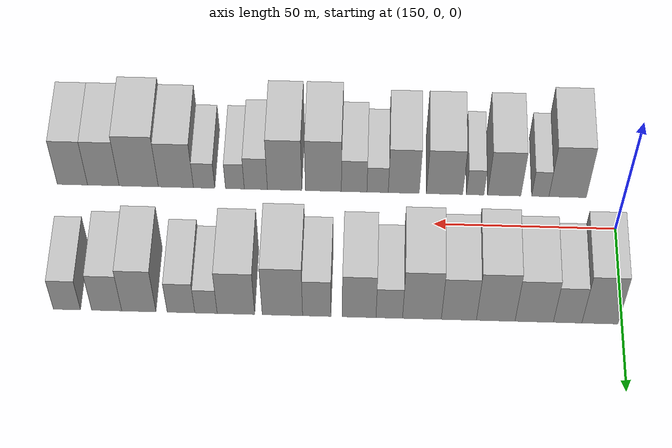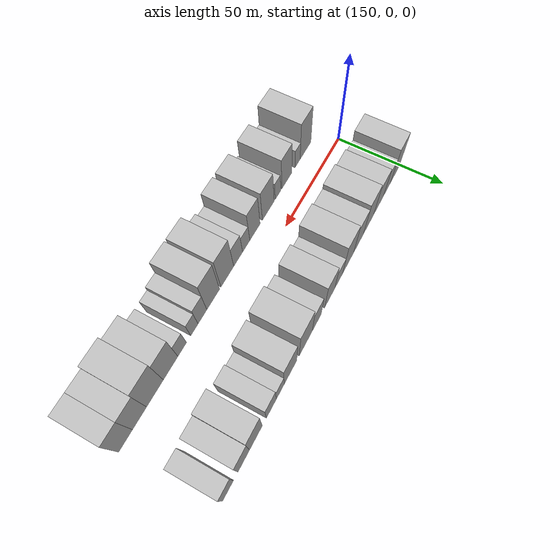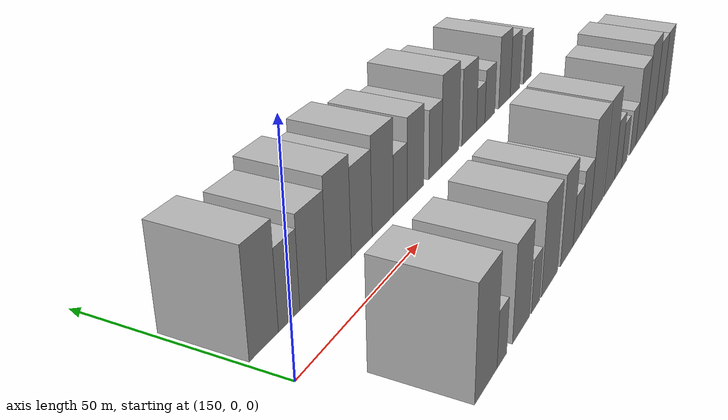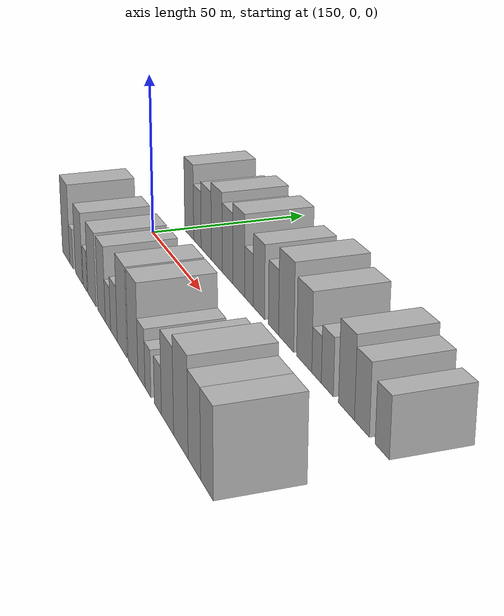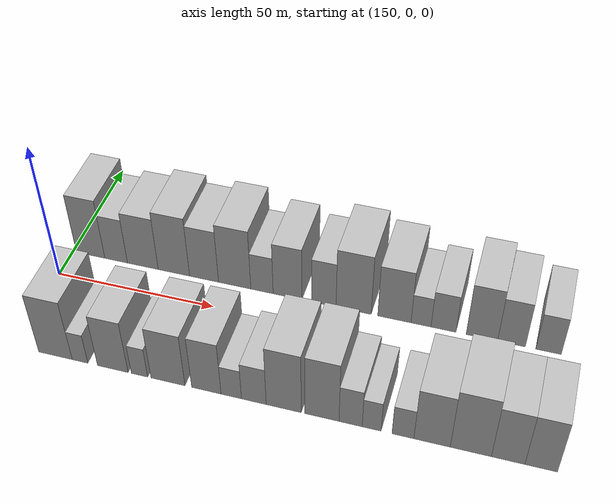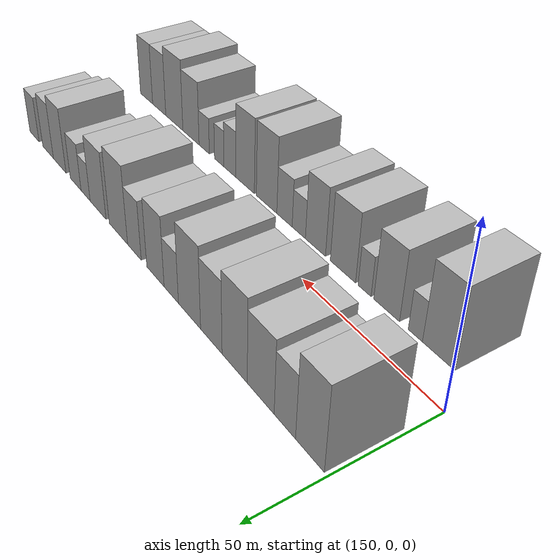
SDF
<sdf version="1.6">
 <world name="default">
  <model name="building_16">
   <static>1</static>
   <pose>155.8896 20.0000 0 0.000000 0.000000 1.570796</pose>
   <link name="link">
    <pose>0 0 12.00 0 0 0</pose>
    <collision name="collision"><geometry><box><size>20.0000 9.6118 24.0000</size></box></geometry></collision>
    <visual name="visual">
     <cast_shadows>0</cast_shadows>
     <geometry><box><size>20.0000 9.6118 24.0000</size></box></geometry>
     <material>
      <script>
       <uri>model://HANNAS_wall/materials/scripts</uri>
       <uri>model://HANNAS_wall/materials/textures</uri>
       <name>vrc/HANNAS_wall</name>
      </script>
     </material>
    </visual>
   </link>
  </model>
  <model name="building_17">
   <static>1</static>
   <pose>164.4881 20.0000 0 0.000000 0.000000 1.570796</pose>
   <link name="link">
    <pose>0 0 9.00 0 0 0</pose>
    <collision name="collision"><geometry><box><size>20.0000 7.5852 18.0000</size></box></geometry></collision>
    <visual name="visual">
     <cast_shadows>0</cast_shadows>
     <geometry><box><size>20.0000 7.5852 18.0000</size></box></geometry>
     <material>
      <script>
       <uri>model://HANNAS_wall/materials/scripts</uri>
       <uri>model://HANNAS_wall/materials/textures</uri>
       <name>vrc/HANNAS_wall</name>
      </script>
     </material>
    </visual>
   </link>
  </model>
  <model name="building_18">
   <static>1</static>
   <pose>173.3869 20.0000 0 0.000000 0.000000 1.570796</pose>
   <link name="link">
    <pose>0 0 10.50 0 0 0</pose>
    <collision name="collision"><geometry><box><size>20.0000 10.2125 21.0000</size></box></geometry></collision>
    <visual name="visual">
     <cast_shadows>0</cast_shadows>
     <geometry><box><size>20.0000 10.2125 21.0000</size></box></geometry>
     <material>
      <script>
       <uri>model://HANNAS_wall/materials/scripts</uri>
       <uri>model://HANNAS_wall/materials/textures</uri>
       <name>vrc/HANNAS_wall</name>
      </script>
     </material>
    </visual>
   </link>
  </model>
  <model name="building_19">
   <static>1</static>
   <pose>183.6347 20.0000 0 0.000000 0.000000 1.570796</pose>
   <link name="link">
    <pose>0 0 12.00 0 0 0</pose>
    <collision name="collision"><geometry><box><size>20.0000 10.2831 24.0000</size></box></geometry></collision>
    <visual name="visual">
     <cast_shadows>0</cast_shadows>
     <geometry><box><size>20.0000 10.2831 24.0000</size></box></geometry>
     <material>
      <script>
       <uri>model://HANNAS_wall/materials/scripts</uri>
       <uri>model://HANNAS_wall/materials/textures</uri>
       <name>vrc/HANNAS_wall</name>
      </script>
     </material>
    </visual>
   </link>
  </model>
  <model name="building_20">
   <static>1</static>
   <pose>193.4591 20.0000 0 0.000000 0.000000 1.570796</pose>
   <link name="link">
    <pose>0 0 10.50 0 0 0</pose>
    <collision name="collision"><geometry><box><size>20.0000 9.3656 21.0000</size></box></geometry></collision>
    <visual name="visual">
     <cast_shadows>0</cast_shadows>
     <geometry><box><size>20.0000 9.3656 21.0000</size></box></geometry>
     <material>
      <script>
       <uri>model://HANNAS_wall/materials/scripts</uri>
       <uri>model://HANNAS_wall/materials/textures</uri>
       <name>vrc/HANNAS_wall</name>
      </script>
     </material>
    </visual>
   </link>
  </model>
  <model name="building_21">
   <static>1</static>
   <pose>203.3100 20.0000 0 0.000000 0.000000 1.570796</pose>
   <link name="link">
    <pose>0 0 12.00 0 0 0</pose>
    <collision name="collision"><geometry><box><size>20.0000 10.3362 24.0000</size></box></geometry></collision>
    <visual name="visual">
     <cast_shadows>0</cast_shadows>
     <geometry><box><size>20.0000 10.3362 24.0000</size></box></geometry>
     <material>
      <script>
       <uri>model://HANNAS_wall/materials/scripts</uri>
       <uri>model://HANNAS_wall/materials/textures</uri>
       <name>vrc/HANNAS_wall</name>
      </script>
     </material>
    </visual>
   </link>
  </model>
  <model name="building_22">
   <static>1</static>
   <pose>212.0211 20.0000 0 0.000000 0.000000 1.570796</pose>
   <link name="link">
    <pose>0 0 7.50 0 0 0</pose>
    <collision name="collision"><geometry><box><size>20.0000 7.0859 15.0000</size></box></geometry></collision>
    <visual name="visual">
     <cast_shadows>0</cast_shadows>
     <geometry><box><size>20.0000 7.0859 15.0000</size></box></geometry>
     <material>
      <script>
       <uri>model://HANNAS_wall/materials/scripts</uri>
       <uri>model://HANNAS_wall/materials/textures</uri>
       <name>vrc/HANNAS_wall</name>
      </script>
     </material>
    </visual>
   </link>
  </model>
  <model name="building_23">
   <static>1</static>
   <pose>220.0758 20.0000 0 0.000000 0.000000 1.570796</pose>
   <link name="link">
    <pose>0 0 10.50 0 0 0</pose>
    <collision name="collision"><geometry><box><size>20.0000 9.0235 21.0000</size></box></geometry></collision>
    <visual name="visual">
     <cast_shadows>0</cast_shadows>
     <geometry><box><size>20.0000 9.0235 21.0000</size></box></geometry>
     <material>
      <script>
       <uri>model://HANNAS_wall/materials/scripts</uri>
       <uri>model://HANNAS_wall/materials/textures</uri>
       <name>vrc/HANNAS_wall</name>
      </script>
     </material>
    </visual>
   </link>
  </model>
  <model name="building_24">
   <static>1</static>
   <pose>231.3806 20.0000 0 0.000000 0.000000 1.570796</pose>
   <link name="link">
    <pose>0 0 9.00 0 0 0</pose>
    <collision name="collision"><geometry><box><size>20.0000 7.5862 18.0000</size></box></geometry></collision>
    <visual name="visual">
     <cast_shadows>0</cast_shadows>
     <geometry><box><size>20.0000 7.5862 18.0000</size></box></geometry>
     <material>
      <script>
       <uri>model://HANNAS_wall/materials/scripts</uri>
       <uri>model://HANNAS_wall/materials/textures</uri>
       <name>vrc/HANNAS_wall</name>
      </script>
     </material>
    </visual>
   </link>
  </model>
  <model name="building_25">
   <static>1</static>
   <pose>240.5744 20.0000 0 0.000000 0.000000 1.570796</pose>
   <link name="link">
    <pose>0 0 12.00 0 0 0</pose>
    <collision name="collision"><geometry><box><size>20.0000 10.8014 24.0000</size></box></geometry></collision>
    <visual name="visual">
     <cast_shadows>0</cast_shadows>
     <geometry><box><size>20.0000 10.8014 24.0000</size></box></geometry>
     <material>
      <script>
       <uri>model://HANNAS_wall/materials/scripts</uri>
       <uri>model://HANNAS_wall/materials/textures</uri>
       <name>vrc/HANNAS_wall</name>
      </script>
     </material>
    </visual>
   </link>
  </model>
  <model name="building_26">
   <static>1</static>
   <pose>252.9992 20.0000 0 0.000000 0.000000 1.570796</pose>
   <link name="link">
    <pose>0 0 10.50 0 0 0</pose>
    <collision name="collision"><geometry><box><size>20.0000 10.0482 21.0000</size></box></geometry></collision>
    <visual name="visual">
     <cast_shadows>0</cast_shadows>
     <geometry><box><size>20.0000 10.0482 21.0000</size></box></geometry>
     <material>
      <script>
       <uri>model://HANNAS_wall/materials/scripts</uri>
       <uri>model://HANNAS_wall/materials/textures</uri>
       <name>vrc/HANNAS_wall</name>
      </script>
     </material>
    </visual>
   </link>
  </model>
  <model name="building_27">
   <static>1</static>
   <pose>261.0181 20.0000 0 0.000000 0.000000 1.570796</pose>
   <link name="link">
    <pose>0 0 6.00 0 0 0</pose>
    <collision name="collision"><geometry><box><size>20.0000 5.9895 12.0000</size></box></geometry></collision>
    <visual name="visual">
     <cast_shadows>0</cast_shadows>
     <geometry><box><size>20.0000 5.9895 12.0000</size></box></geometry>
     <material>
      <script>
       <uri>model://HANNAS_wall/materials/scripts</uri>
       <uri>model://HANNAS_wall/materials/textures</uri>
       <name>vrc/HANNAS_wall</name>
      </script>
     </material>
    </visual>
   </link>
  </model>
  <model name="building_28">
   <static>1</static>
   <pose>267.7192 20.0000 0 0.000000 0.000000 1.570796</pose>
   <link name="link">
    <pose>0 0 7.50 0 0 0</pose>
    <collision name="collision"><geometry><box><size>20.0000 7.4128 15.0000</size></box></geometry></collision>
    <visual name="visual">
     <cast_shadows>0</cast_shadows>
     <geometry><box><size>20.0000 7.4128 15.0000</size></box></geometry>
     <material>
      <script>
       <uri>model://HANNAS_wall/materials/scripts</uri>
       <uri>model://HANNAS_wall/materials/textures</uri>
       <name>vrc/HANNAS_wall</name>
      </script>
     </material>
    </visual>
   </link>
  </model>
  <model name="building_29">
   <static>1</static>
   <pose>279.0179 20.0000 0 0.000000 0.000000 1.570796</pose>
   <link name="link">
    <pose>0 0 10.50 0 0 0</pose>
    <collision name="collision"><geometry><box><size>20.0000 9.1847 21.0000</size></box></geometry></collision>
    <visual name="visual">
     <cast_shadows>0</cast_shadows>
     <geometry><box><size>20.0000 9.1847 21.0000</size></box></geometry>
     <material>
      <script>
       <uri>model://HANNAS_wall/materials/scripts</uri>
       <uri>model://HANNAS_wall/materials/textures</uri>
       <name>vrc/HANNAS_wall</name>
      </script>
     </material>
    </visual>
   </link>
  </model>
  <model name="building_30">
   <static>1</static>
   <pose>287.6468 20.0000 0 0.000000 0.000000 1.570796</pose>
   <link name="link">
    <pose>0 0 9.00 0 0 0</pose>
    <collision name="collision"><geometry><box><size>20.0000 8.0731 18.0000</size></box></geometry></collision>
    <visual name="visual">
     <cast_shadows>0</cast_shadows>
     <geometry><box><size>20.0000 8.0731 18.0000</size></box></geometry>
     <material>
      <script>
       <uri>model://HANNAS_wall/materials/scripts</uri>
       <uri>model://HANNAS_wall/materials/textures</uri>
       <name>vrc/HANNAS_wall</name>
      </script>
     </material>
    </visual>
   </link>
  </model>
  <model name="building_31">
   <static>1</static>
   <pose>298.3227 20.0000 0 0.000000 0.000000 1.570796</pose>
   <link name="link">
    <pose>0 0 7.50 0 0 0</pose>
    <collision name="collision"><geometry><box><size>20.0000 7.2786 15.0000</size></box></geometry></collision>
    <visual name="visual">
     <cast_shadows>0</cast_shadows>
     <geometry><box><size>20.0000 7.2786 15.0000</size></box></geometry>
     <material>
      <script>
       <uri>model://HANNAS_wall/materials/scripts</uri>
       <uri>model://HANNAS_wall/materials/textures</uri>
       <name>vrc/HANNAS_wall</name>
      </script>
     </material>
    </visual>
   </link>
  </model>
  <model name="building_48">
   <static>1</static>
   <pose>162.7396 -20.0000 0 0.000000 0.000000 1.570796</pose>
   <link name="link">
    <pose>0 0 12.00 0 0 0</pose>
    <collision name="collision"><geometry><box><size>20.0000 10.4164 24.0000</size></box></geometry></collision>
    <visual name="visual">
     <cast_shadows>0</cast_shadows>
     <geometry><box><size>20.0000 10.4164 24.0000</size></box></geometry>
     <material>
      <script>
       <uri>model://HANNAS_wall/materials/scripts</uri>
       <uri>model://HANNAS_wall/materials/textures</uri>
       <name>vrc/HANNAS_wall</name>
      </script>
     </material>
    </visual>
   </link>
  </model>
  <model name="building_49">
   <static>1</static>
   <pose>170.3561 -20.0000 0 0.000000 0.000000 1.570796</pose>
   <link name="link">
    <pose>0 0 6.00 0 0 0</pose>
    <collision name="collision"><geometry><box><size>20.0000 4.8167 12.0000</size></box></geometry></collision>
    <visual name="visual">
     <cast_shadows>0</cast_shadows>
     <geometry><box><size>20.0000 4.8167 12.0000</size></box></geometry>
     <material>
      <script>
       <uri>model://HANNAS_wall/materials/scripts</uri>
       <uri>model://HANNAS_wall/materials/textures</uri>
       <name>vrc/HANNAS_wall</name>
      </script>
     </material>
    </visual>
   </link>
  </model>
  <model name="building_50">
   <static>1</static>
   <pose>180.4227 -20.0000 0 0.000000 0.000000 1.570796</pose>
   <link name="link">
    <pose>0 0 10.50 0 0 0</pose>
    <collision name="collision"><geometry><box><size>20.0000 9.3164 21.0000</size></box></geometry></collision>
    <visual name="visual">
     <cast_shadows>0</cast_shadows>
     <geometry><box><size>20.0000 9.3164 21.0000</size></box></geometry>
     <material>
      <script>
       <uri>model://HANNAS_wall/materials/scripts</uri>
       <uri>model://HANNAS_wall/materials/textures</uri>
       <name>vrc/HANNAS_wall</name>
      </script>
     </material>
    </visual>
   </link>
  </model>
  <model name="building_51">
   <static>1</static>
   <pose>188.5477 -20.0000 0 0.000000 0.000000 1.570796</pose>
   <link name="link">
    <pose>0 0 6.00 0 0 0</pose>
    <collision name="collision"><geometry><box><size>20.0000 4.9336 12.0000</size></box></geometry></collision>
    <visual name="visual">
     <cast_shadows>0</cast_shadows>
     <geometry><box><size>20.0000 4.9336 12.0000</size></box></geometry>
     <material>
      <script>
       <uri>model://HANNAS_wall/materials/scripts</uri>
       <uri>model://HANNAS_wall/materials/textures</uri>
       <name>vrc/HANNAS_wall</name>
      </script>
     </material>
    </visual>
   </link>
  </model>
  <model name="building_52">
   <static>1</static>
   <pose>197.0905 -20.0000 0 0.000000 0.000000 1.570796</pose>
   <link name="link">
    <pose>0 0 10.50 0 0 0</pose>
    <collision name="collision"><geometry><box><size>20.0000 10.1520 21.0000</size></box></geometry></collision>
    <visual name="visual">
     <cast_shadows>0</cast_shadows>
     <geometry><box><size>20.0000 10.1520 21.0000</size></box></geometry>
     <material>
      <script>
       <uri>model://HANNAS_wall/materials/scripts</uri>
       <uri>model://HANNAS_wall/materials/textures</uri>
       <name>vrc/HANNAS_wall</name>
      </script>
     </material>
    </visual>
   </link>
  </model>
  <model name="building_53">
   <static>1</static>
   <pose>208.4896 -20.0000 0 0.000000 0.000000 1.570796</pose>
   <link name="link">
    <pose>0 0 10.50 0 0 0</pose>
    <collision name="collision"><geometry><box><size>20.0000 8.6462 21.0000</size></box></geometry></collision>
    <visual name="visual">
     <cast_shadows>0</cast_shadows>
     <geometry><box><size>20.0000 8.6462 21.0000</size></box></geometry>
     <material>
      <script>
       <uri>model://HANNAS_wall/materials/scripts</uri>
       <uri>model://HANNAS_wall/materials/textures</uri>
       <name>vrc/HANNAS_wall</name>
      </script>
     </material>
    </visual>
   </link>
  </model>
  <model name="building_54">
   <static>1</static>
   <pose>215.7920 -20.0000 0 0.000000 0.000000 1.570796</pose>
   <link name="link">
    <pose>0 0 6.00 0 0 0</pose>
    <collision name="collision"><geometry><box><size>20.0000 5.9585 12.0000</size></box></geometry></collision>
    <visual name="visual">
     <cast_shadows>0</cast_shadows>
     <geometry><box><size>20.0000 5.9585 12.0000</size></box></geometry>
     <material>
      <script>
       <uri>model://HANNAS_wall/materials/scripts</uri>
       <uri>model://HANNAS_wall/materials/textures</uri>
       <name>vrc/HANNAS_wall</name>
      </script>
     </material>
    </visual>
   </link>
  </model>
  <model name="building_55">
   <static>1</static>
   <pose>222.3431 -20.0000 0 0.000000 0.000000 1.570796</pose>
   <link name="link">
    <pose>0 0 7.50 0 0 0</pose>
    <collision name="collision"><geometry><box><size>20.0000 7.1437 15.0000</size></box></geometry></collision>
    <visual name="visual">
     <cast_shadows>0</cast_shadows>
     <geometry><box><size>20.0000 7.1437 15.0000</size></box></geometry>
     <material>
      <script>
       <uri>model://HANNAS_wall/materials/scripts</uri>
       <uri>model://HANNAS_wall/materials/textures</uri>
       <name>vrc/HANNAS_wall</name>
      </script>
     </material>
    </visual>
   </link>
  </model>
  <model name="building_56">
   <static>1</static>
   <pose>230.9429 -20.0000 0 0.000000 0.000000 1.570796</pose>
   <link name="link">
    <pose>0 0 12.00 0 0 0</pose>
    <collision name="collision"><geometry><box><size>20.0000 10.0559 24.0000</size></box></geometry></collision>
    <visual name="visual">
     <cast_shadows>0</cast_shadows>
     <geometry><box><size>20.0000 10.0559 24.0000</size></box></geometry>
     <material>
      <script>
       <uri>model://HANNAS_wall/materials/scripts</uri>
       <uri>model://HANNAS_wall/materials/textures</uri>
       <name>vrc/HANNAS_wall</name>
      </script>
     </material>
    </visual>
   </link>
  </model>
  <model name="building_57">
   <static>1</static>
   <pose>241.7944 -20.0000 0 0.000000 0.000000 1.570796</pose>
   <link name="link">
    <pose>0 0 12.00 0 0 0</pose>
    <collision name="collision"><geometry><box><size>20.0000 9.6470 24.0000</size></box></geometry></collision>
    <visual name="visual">
     <cast_shadows>0</cast_shadows>
     <geometry><box><size>20.0000 9.6470 24.0000</size></box></geometry>
     <material>
      <script>
       <uri>model://HANNAS_wall/materials/scripts</uri>
       <uri>model://HANNAS_wall/materials/textures</uri>
       <name>vrc/HANNAS_wall</name>
      </script>
     </material>
    </visual>
   </link>
  </model>
  <model name="building_58">
   <static>1</static>
   <pose>249.8636 -20.0000 0 0.000000 0.000000 1.570796</pose>
   <link name="link">
    <pose>0 0 7.50 0 0 0</pose>
    <collision name="collision"><geometry><box><size>20.0000 6.4913 15.0000</size></box></geometry></collision>
    <visual name="visual">
     <cast_shadows>0</cast_shadows>
     <geometry><box><size>20.0000 6.4913 15.0000</size></box></geometry>
     <material>
      <script>
       <uri>model://HANNAS_wall/materials/scripts</uri>
       <uri>model://HANNAS_wall/materials/textures</uri>
       <name>vrc/HANNAS_wall</name>
      </script>
     </material>
    </visual>
   </link>
  </model>
  <model name="building_59">
   <static>1</static>
   <pose>255.7365 -20.0000 0 0.000000 0.000000 1.570796</pose>
   <link name="link">
    <pose>0 0 6.00 0 0 0</pose>
    <collision name="collision"><geometry><box><size>20.0000 5.2545 12.0000</size></box></geometry></collision>
    <visual name="visual">
     <cast_shadows>0</cast_shadows>
     <geometry><box><size>20.0000 5.2545 12.0000</size></box></geometry>
     <material>
      <script>
       <uri>model://HANNAS_wall/materials/scripts</uri>
       <uri>model://HANNAS_wall/materials/textures</uri>
       <name>vrc/HANNAS_wall</name>
      </script>
     </material>
    </visual>
   </link>
  </model>
  <model name="building_60">
   <static>1</static>
   <pose>264.3613 -20.0000 0 0.000000 0.000000 1.570796</pose>
   <link name="link">
    <pose>0 0 6.00 0 0 0</pose>
    <collision name="collision"><geometry><box><size>20.0000 5.9952 12.0000</size></box></geometry></collision>
    <visual name="visual">
     <cast_shadows>0</cast_shadows>
     <geometry><box><size>20.0000 5.9952 12.0000</size></box></geometry>
     <material>
      <script>
       <uri>model://HANNAS_wall/materials/scripts</uri>
       <uri>model://HANNAS_wall/materials/textures</uri>
       <name>vrc/HANNAS_wall</name>
      </script>
     </material>
    </visual>
   </link>
  </model>
  <model name="building_61">
   <static>1</static>
   <pose>272.2958 -20.0000 0 0.000000 0.000000 1.570796</pose>
   <link name="link">
    <pose>0 0 10.50 0 0 0</pose>
    <collision name="collision"><geometry><box><size>20.0000 9.8737 21.0000</size></box></geometry></collision>
    <visual name="visual">
     <cast_shadows>0</cast_shadows>
     <geometry><box><size>20.0000 9.8737 21.0000</size></box></geometry>
     <material>
      <script>
       <uri>model://HANNAS_wall/materials/scripts</uri>
       <uri>model://HANNAS_wall/materials/textures</uri>
       <name>vrc/HANNAS_wall</name>
      </script>
     </material>
    </visual>
   </link>
  </model>
  <model name="building_62">
   <static>1</static>
   <pose>282.7330 -20.0000 0 0.000000 0.000000 1.570796</pose>
   <link name="link">
    <pose>0 0 12.00 0 0 0</pose>
    <collision name="collision"><geometry><box><size>20.0000 11.0007 24.0000</size></box></geometry></collision>
    <visual name="visual">
     <cast_shadows>0</cast_shadows>
     <geometry><box><size>20.0000 11.0007 24.0000</size></box></geometry>
     <material>
      <script>
       <uri>model://HANNAS_wall/materials/scripts</uri>
       <uri>model://HANNAS_wall/materials/textures</uri>
       <name>vrc/HANNAS_wall</name>
      </script>
     </material>
    </visual>
   </link>
  </model>
  <model name="building_63">
   <static>1</static>
   <pose>292.6675 -20.0000 0 0.000000 0.000000 1.570796</pose>
   <link name="link">
    <pose>0 0 10.50 0 0 0</pose>
    <collision name="collision"><geometry><box><size>20.0000 8.8683 21.0000</size></box></geometry></collision>
    <visual name="visual">
     <cast_shadows>0</cast_shadows>
     <geometry><box><size>20.0000 8.8683 21.0000</size></box></geometry>
     <material>
      <script>
       <uri>model://HANNAS_wall/materials/scripts</uri>
       <uri>model://HANNAS_wall/materials/textures</uri>
       <name>vrc/HANNAS_wall</name>
      </script>
     </material>
    </visual>
   </link>
  </model>
  <model name="building_64">
   <static>1</static>
   <pose>301.3552 -20.0000 0 0.000000 0.000000 1.570796</pose>
   <link name="link">
    <pose>0 0 10.50 0 0 0</pose>
    <collision name="collision"><geometry><box><size>20.0000 8.5072 21.0000</size></box></geometry></collision>
    <visual name="visual">
     <cast_shadows>0</cast_shadows>
     <geometry><box><size>20.0000 8.5072 21.0000</size></box></geometry>
     <material>
      <script>
       <uri>model://HANNAS_wall/materials/scripts</uri>
       <uri>model://HANNAS_wall/materials/textures</uri>
       <name>vrc/HANNAS_wall</name>
      </script>
     </material>
    </visual>
   </link>
  </model>
 </world>
</sdf>
